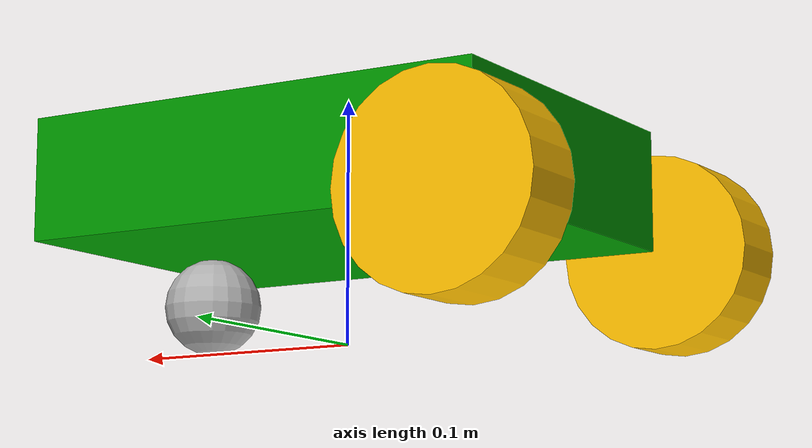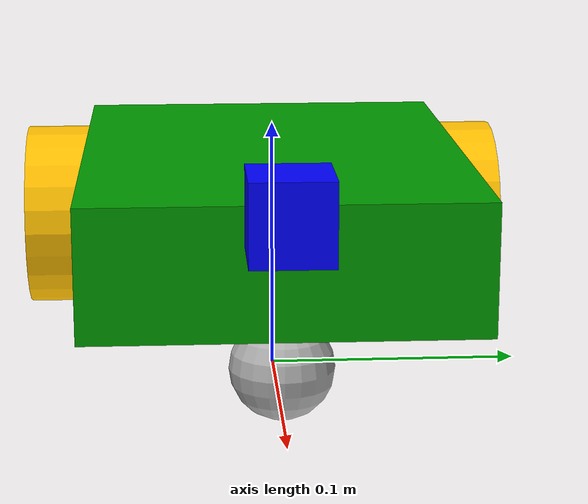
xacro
<?xml version="1.0"?>
<robot name="my_robot" xmlns:xacro="http://www.ros.org/wiki/xacro">

    <xacro:property name="base_length" value="0.2" />
    <xacro:property name="base_width" value="0.15" />
    <xacro:property name="base_height" value="0.05" />
    <xacro:property name="wheel_radius" value="0.04" />
    <xacro:property name="wheel_length" value="0.03" />
    <xacro:property name="wheel_mass" value="0.5" />
<xacro:property name="wheel_ixx_iyy" value="${(1/12)*wheel_mass*(3*wheel_radius**2 + wheel_length**2)}" />
<xacro:property name="wheel_izz" value="${0.5*wheel_mass*wheel_radius**2}" />

    <xacro:property name="camera_side_length" value="0.03" />

    <xacro:include filename="$(find my_robot_description)/urdf/common_properties.xacro" />
    <xacro:include filename="$(find my_robot_description)/urdf/gazebo_plugins.xacro" />

    <material name="green">
        <color rgba="0 0.6 0 1" />
    </material>

    <material name="gray">
        <color rgba="0.7 0.7 0.7 1" />
    </material>

    <material name="yellow">
        <color rgba="1.0 0.75 0 1" />
    </material>

    <material name="blue">
        <color rgba="0 0 1 1" />
    </material>

    <link name="camera_link">
        <xacro:box_inertia m="0.01" x="${camera_side_length}" y="${camera_side_length}"
        z="${camera_side_length}" o_xyz="${camera_side_length / 2} 0 0" o_rpy="0 0 0" />

        <visual>
            <geometry>
                <box size="${camera_side_length} ${camera_side_length} ${camera_side_length}" />
            </geometry>
            <origin xyz="${camera_side_length / 2} 0 0" rpy="0 0 0" />
            <material name="blue" />
        </visual>
    </link>

    <link name="base_link">
        <xacro:box_inertia m="5.0" x="${base_length}" y="${base_width}" z="${base_height}"
        o_xyz="0 0 ${base_height / 2.0}" o_rpy="0 0 0" />

        <collision>
            <origin xyz="0 0 ${base_height / 2.0}" rpy="0 0 0" />
            <geometry>
                <box size="${base_length} ${base_width} ${base_height}" />
            </geometry>
        </collision>

        <visual>
            <geometry>
                <box size="${base_length} ${base_width} ${base_height}" />
            </geometry>
            <origin xyz="0 0 ${base_height / 2.0}" rpy="0 0 0" />
            <material name="green" />
        </visual>

    </link>

    <!--TODO Adding wheels links - add "right_wheel_link" and "left_wheel_link" here-->
<link name="left_wheel_link">
    <inertial>
        <origin xyz="0 0 0" rpy="1.5707 0 0" />
        <mass value="${wheel_mass}" />
        <inertia ixx="${wheel_ixx_iyy}" ixy="0" ixz="0" iyy="${wheel_ixx_iyy}" iyz="0" izz="${wheel_izz}" />
    </inertial>
    <visual>
        <origin xyz="0 0 0" rpy="1.5707 0 0" />
        <geometry>
            <cylinder radius="${wheel_radius}" length="${wheel_length}" />
        </geometry>
        <material name="yellow" />
    </visual>
    <collision>
        <origin xyz="0 0 0" rpy="1.5707 0 0" />
        <geometry>
            <cylinder radius="${wheel_radius}" length="${wheel_length}" />
        </geometry>
    </collision>
</link>

<link name="right_wheel_link">
    <inertial>
        <origin xyz="0 0 0" rpy="1.5707 0 0" />
        <mass value="${wheel_mass}" />
        <inertia ixx="${wheel_ixx_iyy}" ixy="0" ixz="0" iyy="${wheel_ixx_iyy}" iyz="0" izz="${wheel_izz}" />
    </inertial>
    <visual>
        <origin xyz="0 0 0" rpy="1.5707 0 0" />
        <geometry>
            <cylinder radius="${wheel_radius}" length="${wheel_length}" />
        </geometry>
        <material name="yellow" />
    </visual>
    <collision>
        <origin xyz="0 0 0" rpy="1.5707 0 0" />
        <geometry>
            <cylinder radius="${wheel_radius}" length="${wheel_length}" />
        </geometry>
    </collision>
</link>

    <!-- End Adding wheels links -->

    <link name="caster_wheel_link">
        <xacro:sphere_inertia m="0.5" r="${wheel_radius / 2.0}"  o_xyz="0 0 0" o_rpy="0 0 0" />

        <collision>
            <origin xyz="0 0 0" rpy="0 0 0" />
            <geometry>
                <sphere radius="${wheel_radius / 2.0}" />
            </geometry>
        </collision>

        <visual>
            <geometry>
                <sphere radius="${wheel_radius / 2.0}" />
            </geometry>
            <origin xyz="0 0 0" rpy="0 0 0 " />
            <material name="gray" />
        </visual>
    </link>

    <link name="base_footprint" />

    <joint name="base_camera_joint" type="fixed">
        <parent link="base_link" />
        <child link="camera_link" />
        <origin xyz="${base_length / 2} 0 ${base_height}" rpy="0 0 0" />
    </joint>

    <!-- TODO Adding wheels joints - add a joint to the base_link for each wheel-->

<joint name="left_wheel_joint" type="continuous">
    <parent link="base_link" />
    <child link="left_wheel_link" />
<origin xyz="-${base_length/2} ${base_width/2 + wheel_length/2} 0" rpy="0 0 0" />
    <axis xyz="0 1 0" />
</joint>

<joint name="right_wheel_joint" type="continuous">
    <parent link="base_link" />
    <child link="right_wheel_link" />
    <origin xyz="-${base_length/2} -${base_width/2 + wheel_length/2} 0" rpy="0 0 0" />

    <axis xyz="0 1 0" />
</joint>

    <!-- End Adding wheels joints -->

    <joint name="base_caster_wheel_joint" type="fixed">
        <parent link="base_link" />
        <child link="caster_wheel_link" />
        <origin xyz="${base_length / 3.0} 0 ${-wheel_radius / 2.0}" rpy="0 0 0" />
    </joint>

    <joint name="base_joint" type="fixed">
        <parent link="base_footprint" />
        <child link="base_link" />
        <origin xyz="0 0 ${wheel_radius}" rpy="0 0 0" />
    </joint>

   <!-- Diffrential Drive -->

<gazebo>
    <plugin filename="gz-sim-diff-drive-system"
        name="gz::sim::systems::DiffDrive">

        <left_joint>left_wheel_joint</left_joint>
        <right_joint>right_wheel_joint</right_joint>

        <wheel_separation>${base_width + wheel_length}</wheel_separation>
        <wheel_radius>${wheel_radius}</wheel_radius>

        <odom_publish_frequency>50</odom_publish_frequency>

        <topic>cmd_vel</topic>
        <tf_topic>tf</tf_topic>

        <frame_id>odom</frame_id>
        <child_frame_id>base_footprint</child_frame_id>

    </plugin>
</gazebo>

<gazebo>
    <plugin filename="gz-sim-pose-publisher-system"
        name="gz::sim::systems::PosePublisher">

        <publish_model_pose>true</publish_model_pose>
        <publish_link_pose>false</publish_link_pose>
        <publish_sensor_pose>false</publish_sensor_pose>
        <publish_collision_pose>false</publish_collision_pose>
        <publish_visual_pose>false</publish_visual_pose>

        <update_frequency>50</update_frequency>

        <use_pose_vector_msg>false</use_pose_vector_msg>

    </plugin>
</gazebo>

</robot>
